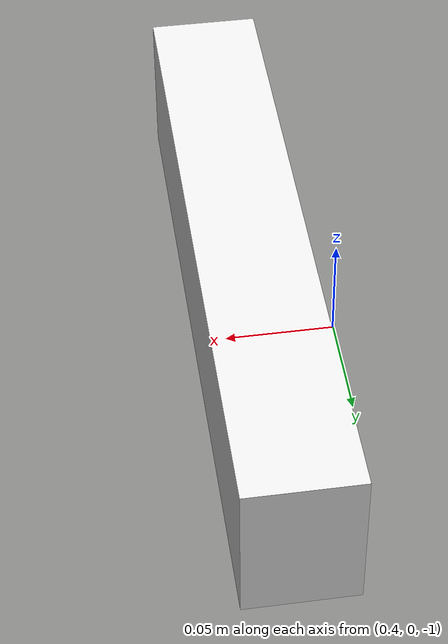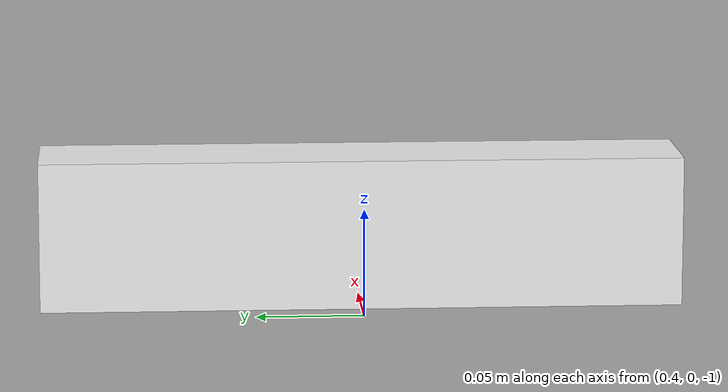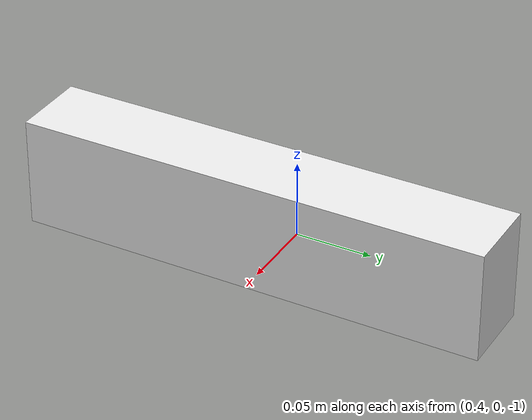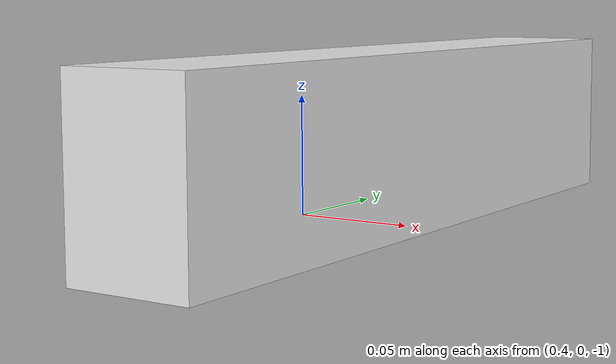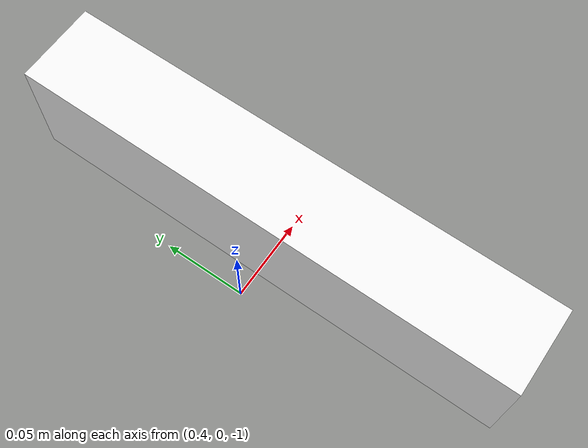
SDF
<sdf version='1.6'>
  <model name='hanoi_box'>
    <link name='board_box'>
      <pose frame=''>0 0 0 0 -0 0</pose>
      <inertial>
        <pose frame=''>0.44 0 -0.965 0 -0 0</pose>
        <mass>1</mass>
        <inertia>
          <ixx>0</ixx>
          <ixy>0</ixy>
          <ixz>0</ixz>
          <iyy>0</iyy>
          <iyz>0</iyz>
          <izz>0</izz>
        </inertia>
      </inertial>
      <collision name='board_box_collision'>
        <pose frame=''>0.44 0 -0.965 0 -0 0</pose>
        <geometry>
          <box>
            <size>0.05 0.3 0.07</size>
          </box>
        </geometry>
        <surface>
          <contact>
            <ode/>
          </contact>
          <friction>
            <ode/>
          </friction>
        </surface>
      </collision>
      <visual name='board_box_visual'>
        <pose frame=''>0.44 0 -0.965 0 -0 0</pose>
        <geometry>
          <box>
            <size>0.05 0.3 0.07</size>
          </box>
        </geometry>
        <material>
          <script>
            <name>Gazebo/White</name>
            <uri>file://media/materials/scripts/gazebo.material</uri>
          </script>
        </material>
      </visual>
      <gravity>1</gravity>
      <velocity_decay/>
    </link>
    <joint name='fixed' type='fixed'>
      <child>board_box</child>
      <parent>world</parent>
    </joint>
  </model>
</sdf>
